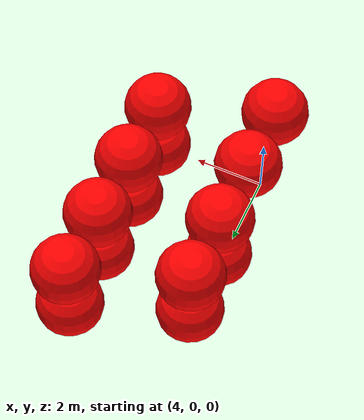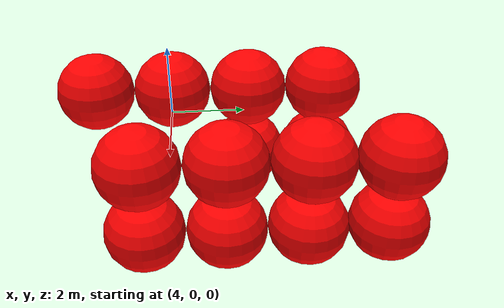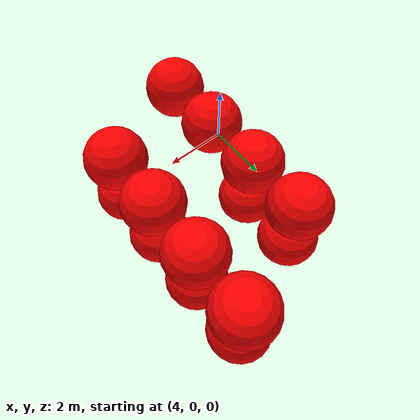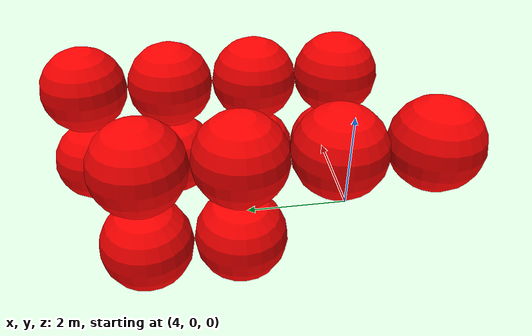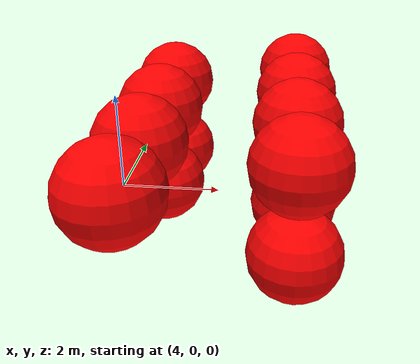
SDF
<sdf version="1.8">
 <world name="3d_world">
  <model name="obstacle_1" canonical_link="obstacle">
   <static>true</static>
   <pose relative_to="world">7.61 -0.64 -1.00 0 0 0</pose>
   <link name="obstacle">
    <pose relative_to="__model__">0.0 0 0.0 0 0 0</pose>
    <visual name="visual">
     <geometry><sphere><radius>1.00</radius></sphere></geometry>
     <material>
      <ambient>1.0 0.0 0.0 1</ambient>
      <diffuse>1.0 0.0 0.0 1</diffuse>
      <specular>1.0 0.0 0.0 1</specular>
     </material>
    </visual>
    <collision name="collision"><geometry><sphere><radius>1.00</radius></sphere></geometry></collision>
    <enable_gravity>false</enable_gravity>
   </link>
   <plugin filename="ignition-gazebo-velocity-control-system" name="ignition::gazebo::systems::VelocityControl">
    <initial_linear>0.00 0.00 0.00</initial_linear>
    <initial_angular>0 0 0</initial_angular>
   </plugin>
   <plugin filename="ignition-gazebo-odometry-publisher-system" name="ignition::gazebo::systems::OdometryPublisher">
    <dimensions>3</dimensions>
   </plugin>
  </model>
  <model name="obstacle_2" canonical_link="obstacle">
   <static>true</static>
   <pose relative_to="world">7.61 1.36 -1.00 0 0 0</pose>
   <link name="obstacle">
    <pose relative_to="__model__">0.0 0 0.0 0 0 0</pose>
    <visual name="visual">
     <geometry><sphere><radius>1.00</radius></sphere></geometry>
     <material>
      <ambient>1.0 0.0 0.0 1</ambient>
      <diffuse>1.0 0.0 0.0 1</diffuse>
      <specular>1.0 0.0 0.0 1</specular>
     </material>
    </visual>
    <collision name="collision"><geometry><sphere><radius>1.00</radius></sphere></geometry></collision>
    <enable_gravity>false</enable_gravity>
   </link>
   <plugin filename="ignition-gazebo-velocity-control-system" name="ignition::gazebo::systems::VelocityControl">
    <initial_linear>0.00 0.00 0.00</initial_linear>
    <initial_angular>0 0 0</initial_angular>
   </plugin>
   <plugin filename="ignition-gazebo-odometry-publisher-system" name="ignition::gazebo::systems::OdometryPublisher">
    <dimensions>3</dimensions>
   </plugin>
  </model>
  <model name="obstacle_3" canonical_link="obstacle">
   <static>true</static>
   <pose relative_to="world">7.61 3.36 -1.00 0 0 0</pose>
   <link name="obstacle">
    <pose relative_to="__model__">0.0 0 0.0 0 0 0</pose>
    <visual name="visual">
     <geometry><sphere><radius>1.00</radius></sphere></geometry>
     <material>
      <ambient>1.0 0.0 0.0 1</ambient>
      <diffuse>1.0 0.0 0.0 1</diffuse>
      <specular>1.0 0.0 0.0 1</specular>
     </material>
    </visual>
    <collision name="collision"><geometry><sphere><radius>1.00</radius></sphere></geometry></collision>
    <enable_gravity>false</enable_gravity>
   </link>
   <plugin filename="ignition-gazebo-velocity-control-system" name="ignition::gazebo::systems::VelocityControl">
    <initial_linear>0.00 0.00 0.00</initial_linear>
    <initial_angular>0 0 0</initial_angular>
   </plugin>
   <plugin filename="ignition-gazebo-odometry-publisher-system" name="ignition::gazebo::systems::OdometryPublisher">
    <dimensions>3</dimensions>
   </plugin>
  </model>
  <model name="obstacle_4" canonical_link="obstacle">
   <static>true</static>
   <pose relative_to="world">7.61 5.36 -1.00 0 0 0</pose>
   <link name="obstacle">
    <pose relative_to="__model__">0.0 0 0.0 0 0 0</pose>
    <visual name="visual">
     <geometry><sphere><radius>1.00</radius></sphere></geometry>
     <material>
      <ambient>1.0 0.0 0.0 1</ambient>
      <diffuse>1.0 0.0 0.0 1</diffuse>
      <specular>1.0 0.0 0.0 1</specular>
     </material>
    </visual>
    <collision name="collision"><geometry><sphere><radius>1.00</radius></sphere></geometry></collision>
    <enable_gravity>false</enable_gravity>
   </link>
   <plugin filename="ignition-gazebo-velocity-control-system" name="ignition::gazebo::systems::VelocityControl">
    <initial_linear>0.00 0.00 0.00</initial_linear>
    <initial_angular>0 0 0</initial_angular>
   </plugin>
   <plugin filename="ignition-gazebo-odometry-publisher-system" name="ignition::gazebo::systems::OdometryPublisher">
    <dimensions>3</dimensions>
   </plugin>
  </model>
  <model name="obstacle_5" canonical_link="obstacle">
   <static>true</static>
   <pose relative_to="world">7.61 -0.64 1.00 0 0 0</pose>
   <link name="obstacle">
    <pose relative_to="__model__">0.0 0 0.0 0 0 0</pose>
    <visual name="visual">
     <geometry><sphere><radius>1.00</radius></sphere></geometry>
     <material>
      <ambient>1.0 0.0 0.0 1</ambient>
      <diffuse>1.0 0.0 0.0 1</diffuse>
      <specular>1.0 0.0 0.0 1</specular>
     </material>
    </visual>
    <collision name="collision"><geometry><sphere><radius>1.00</radius></sphere></geometry></collision>
    <enable_gravity>false</enable_gravity>
   </link>
   <plugin filename="ignition-gazebo-velocity-control-system" name="ignition::gazebo::systems::VelocityControl">
    <initial_linear>0.00 0.00 0.00</initial_linear>
    <initial_angular>0 0 0</initial_angular>
   </plugin>
   <plugin filename="ignition-gazebo-odometry-publisher-system" name="ignition::gazebo::systems::OdometryPublisher">
    <dimensions>3</dimensions>
   </plugin>
  </model>
  <model name="obstacle_6" canonical_link="obstacle">
   <static>true</static>
   <pose relative_to="world">7.61 1.36 1.00 0 0 0</pose>
   <link name="obstacle">
    <pose relative_to="__model__">0.0 0 0.0 0 0 0</pose>
    <visual name="visual">
     <geometry><sphere><radius>1.00</radius></sphere></geometry>
     <material>
      <ambient>1.0 0.0 0.0 1</ambient>
      <diffuse>1.0 0.0 0.0 1</diffuse>
      <specular>1.0 0.0 0.0 1</specular>
     </material>
    </visual>
    <collision name="collision"><geometry><sphere><radius>1.00</radius></sphere></geometry></collision>
    <enable_gravity>false</enable_gravity>
   </link>
   <plugin filename="ignition-gazebo-velocity-control-system" name="ignition::gazebo::systems::VelocityControl">
    <initial_linear>0.00 0.00 0.00</initial_linear>
    <initial_angular>0 0 0</initial_angular>
   </plugin>
   <plugin filename="ignition-gazebo-odometry-publisher-system" name="ignition::gazebo::systems::OdometryPublisher">
    <dimensions>3</dimensions>
   </plugin>
  </model>
  <model name="obstacle_7" canonical_link="obstacle">
   <static>true</static>
   <pose relative_to="world">7.61 3.36 1.00 0 0 0</pose>
   <link name="obstacle">
    <pose relative_to="__model__">0.0 0 0.0 0 0 0</pose>
    <visual name="visual">
     <geometry><sphere><radius>1.00</radius></sphere></geometry>
     <material>
      <ambient>1.0 0.0 0.0 1</ambient>
      <diffuse>1.0 0.0 0.0 1</diffuse>
      <specular>1.0 0.0 0.0 1</specular>
     </material>
    </visual>
    <collision name="collision"><geometry><sphere><radius>1.00</radius></sphere></geometry></collision>
    <enable_gravity>false</enable_gravity>
   </link>
   <plugin filename="ignition-gazebo-velocity-control-system" name="ignition::gazebo::systems::VelocityControl">
    <initial_linear>0.00 0.00 0.00</initial_linear>
    <initial_angular>0 0 0</initial_angular>
   </plugin>
   <plugin filename="ignition-gazebo-odometry-publisher-system" name="ignition::gazebo::systems::OdometryPublisher">
    <dimensions>3</dimensions>
   </plugin>
  </model>
  <model name="obstacle_8" canonical_link="obstacle">
   <static>true</static>
   <pose relative_to="world">7.61 5.36 1.00 0 0 0</pose>
   <link name="obstacle">
    <pose relative_to="__model__">0.0 0 0.0 0 0 0</pose>
    <visual name="visual">
     <geometry><sphere><radius>1.00</radius></sphere></geometry>
     <material>
      <ambient>1.0 0.0 0.0 1</ambient>
      <diffuse>1.0 0.0 0.0 1</diffuse>
      <specular>1.0 0.0 0.0 1</specular>
     </material>
    </visual>
    <collision name="collision"><geometry><sphere><radius>1.00</radius></sphere></geometry></collision>
    <enable_gravity>false</enable_gravity>
   </link>
   <plugin filename="ignition-gazebo-velocity-control-system" name="ignition::gazebo::systems::VelocityControl">
    <initial_linear>0.00 0.00 0.00</initial_linear>
    <initial_angular>0 0 0</initial_angular>
   </plugin>
   <plugin filename="ignition-gazebo-odometry-publisher-system" name="ignition::gazebo::systems::OdometryPublisher">
    <dimensions>3</dimensions>
   </plugin>
  </model>
  <model name="obstacle_15" canonical_link="obstacle">
   <static>true</static>
   <pose relative_to="world">4.39 2.09 -1.00 0 0 0</pose>
   <link name="obstacle">
    <pose relative_to="__model__">0.0 0 0.0 0 0 0</pose>
    <visual name="visual">
     <geometry><sphere><radius>1.00</radius></sphere></geometry>
     <material>
      <ambient>1.0 0.0 0.0 1</ambient>
      <diffuse>1.0 0.0 0.0 1</diffuse>
      <specular>1.0 0.0 0.0 1</specular>
     </material>
    </visual>
    <collision name="collision"><geometry><sphere><radius>1.00</radius></sphere></geometry></collision>
    <enable_gravity>false</enable_gravity>
   </link>
   <plugin filename="ignition-gazebo-velocity-control-system" name="ignition::gazebo::systems::VelocityControl">
    <initial_linear>0.00 0.00 0.00</initial_linear>
    <initial_angular>0 0 0</initial_angular>
   </plugin>
   <plugin filename="ignition-gazebo-odometry-publisher-system" name="ignition::gazebo::systems::OdometryPublisher">
    <dimensions>3</dimensions>
   </plugin>
  </model>
  <model name="obstacle_16" canonical_link="obstacle">
   <static>true</static>
   <pose relative_to="world">4.39 4.09 -1.00 0 0 0</pose>
   <link name="obstacle">
    <pose relative_to="__model__">0.0 0 0.0 0 0 0</pose>
    <visual name="visual">
     <geometry><sphere><radius>1.00</radius></sphere></geometry>
     <material>
      <ambient>1.0 0.0 0.0 1</ambient>
      <diffuse>1.0 0.0 0.0 1</diffuse>
      <specular>1.0 0.0 0.0 1</specular>
     </material>
    </visual>
    <collision name="collision"><geometry><sphere><radius>1.00</radius></sphere></geometry></collision>
    <enable_gravity>false</enable_gravity>
   </link>
   <plugin filename="ignition-gazebo-velocity-control-system" name="ignition::gazebo::systems::VelocityControl">
    <initial_linear>0.00 0.00 0.00</initial_linear>
    <initial_angular>0 0 0</initial_angular>
   </plugin>
   <plugin filename="ignition-gazebo-odometry-publisher-system" name="ignition::gazebo::systems::OdometryPublisher">
    <dimensions>3</dimensions>
   </plugin>
  </model>
  <model name="obstacle_17" canonical_link="obstacle">
   <static>true</static>
   <pose relative_to="world">4.39 -1.91 1.00 0 0 0</pose>
   <link name="obstacle">
    <pose relative_to="__model__">0.0 0 0.0 0 0 0</pose>
    <visual name="visual">
     <geometry><sphere><radius>1.00</radius></sphere></geometry>
     <material>
      <ambient>1.0 0.0 0.0 1</ambient>
      <diffuse>1.0 0.0 0.0 1</diffuse>
      <specular>1.0 0.0 0.0 1</specular>
     </material>
    </visual>
    <collision name="collision"><geometry><sphere><radius>1.00</radius></sphere></geometry></collision>
    <enable_gravity>false</enable_gravity>
   </link>
   <plugin filename="ignition-gazebo-velocity-control-system" name="ignition::gazebo::systems::VelocityControl">
    <initial_linear>0.00 0.00 0.00</initial_linear>
    <initial_angular>0 0 0</initial_angular>
   </plugin>
   <plugin filename="ignition-gazebo-odometry-publisher-system" name="ignition::gazebo::systems::OdometryPublisher">
    <dimensions>3</dimensions>
   </plugin>
  </model>
  <model name="obstacle_18" canonical_link="obstacle">
   <static>true</static>
   <pose relative_to="world">4.39 0.09 1.00 0 0 0</pose>
   <link name="obstacle">
    <pose relative_to="__model__">0.0 0 0.0 0 0 0</pose>
    <visual name="visual">
     <geometry><sphere><radius>1.00</radius></sphere></geometry>
     <material>
      <ambient>1.0 0.0 0.0 1</ambient>
      <diffuse>1.0 0.0 0.0 1</diffuse>
      <specular>1.0 0.0 0.0 1</specular>
     </material>
    </visual>
    <collision name="collision"><geometry><sphere><radius>1.00</radius></sphere></geometry></collision>
    <enable_gravity>false</enable_gravity>
   </link>
   <plugin filename="ignition-gazebo-velocity-control-system" name="ignition::gazebo::systems::VelocityControl">
    <initial_linear>0.00 0.00 0.00</initial_linear>
    <initial_angular>0 0 0</initial_angular>
   </plugin>
   <plugin filename="ignition-gazebo-odometry-publisher-system" name="ignition::gazebo::systems::OdometryPublisher">
    <dimensions>3</dimensions>
   </plugin>
  </model>
  <model name="obstacle_19" canonical_link="obstacle">
   <static>true</static>
   <pose relative_to="world">4.39 2.09 1.00 0 0 0</pose>
   <link name="obstacle">
    <pose relative_to="__model__">0.0 0 0.0 0 0 0</pose>
    <visual name="visual">
     <geometry><sphere><radius>1.00</radius></sphere></geometry>
     <material>
      <ambient>1.0 0.0 0.0 1</ambient>
      <diffuse>1.0 0.0 0.0 1</diffuse>
      <specular>1.0 0.0 0.0 1</specular>
     </material>
    </visual>
    <collision name="collision"><geometry><sphere><radius>1.00</radius></sphere></geometry></collision>
    <enable_gravity>false</enable_gravity>
   </link>
   <plugin filename="ignition-gazebo-velocity-control-system" name="ignition::gazebo::systems::VelocityControl">
    <initial_linear>0.00 0.00 0.00</initial_linear>
    <initial_angular>0 0 0</initial_angular>
   </plugin>
   <plugin filename="ignition-gazebo-odometry-publisher-system" name="ignition::gazebo::systems::OdometryPublisher">
    <dimensions>3</dimensions>
   </plugin>
  </model>
  <model name="obstacle_20" canonical_link="obstacle">
   <static>true</static>
   <pose relative_to="world">4.39 4.09 1.00 0 0 0</pose>
   <link name="obstacle">
    <pose relative_to="__model__">0.0 0 0.0 0 0 0</pose>
    <visual name="visual">
     <geometry><sphere><radius>1.00</radius></sphere></geometry>
     <material>
      <ambient>1.0 0.0 0.0 1</ambient>
      <diffuse>1.0 0.0 0.0 1</diffuse>
      <specular>1.0 0.0 0.0 1</specular>
     </material>
    </visual>
    <collision name="collision"><geometry><sphere><radius>1.00</radius></sphere></geometry></collision>
    <enable_gravity>false</enable_gravity>
   </link>
   <plugin filename="ignition-gazebo-velocity-control-system" name="ignition::gazebo::systems::VelocityControl">
    <initial_linear>0.00 0.00 0.00</initial_linear>
    <initial_angular>0 0 0</initial_angular>
   </plugin>
   <plugin filename="ignition-gazebo-odometry-publisher-system" name="ignition::gazebo::systems::OdometryPublisher">
    <dimensions>3</dimensions>
   </plugin>
  </model>
 </world>
</sdf>
